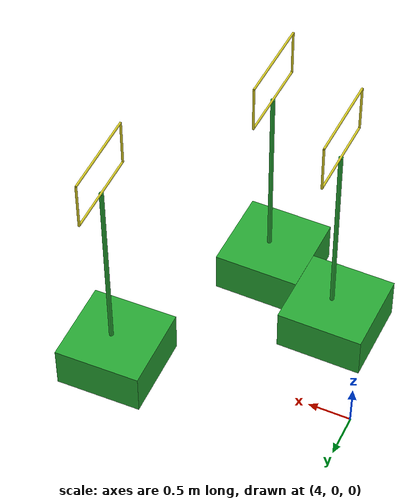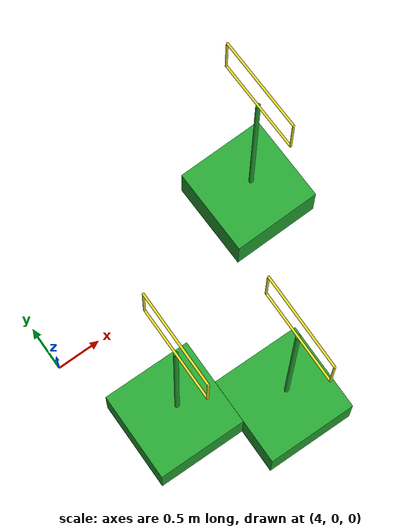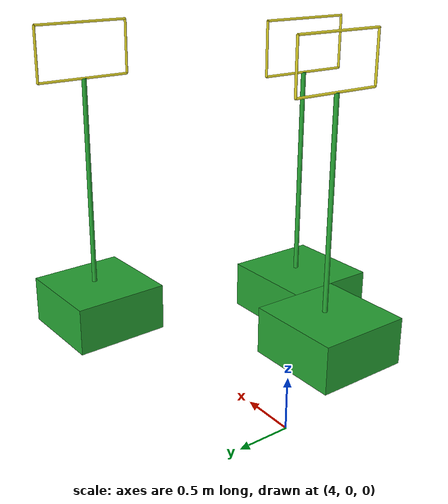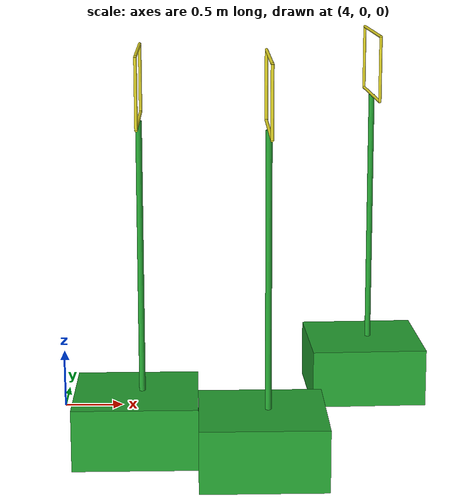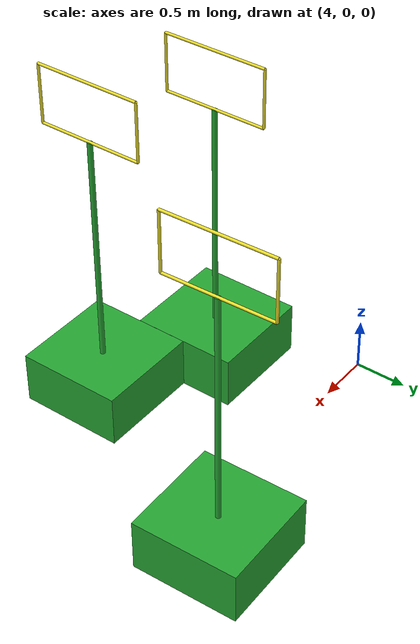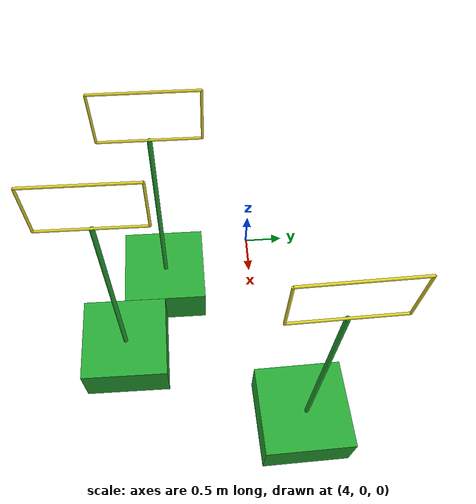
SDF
<sdf version="1.6">
 <world name="vrc_task_1">
  <model name="flipkart_hoop_clone">
   <link name="link_0">
    <inertial>
     <mass>0.530306</mass>
     <inertia>
      <ixx>0.0566207</ixx>
      <ixy>0</ixy>
      <ixz>0</ixz>
      <iyy>0.0566207</iyy>
      <iyz>0</iyz>
      <izz>0.0883844</izz>
     </inertia>
    </inertial>
    <pose>0.141833 0.667401 -1.68595 0 -0 0</pose>
    <visual name="visual">
     <geometry><box><size>1 1 0.5</size></box></geometry>
     <material>
      <lighting>1</lighting>
      <script><uri>file://media/materials/scripts/gazebo.material</uri><name>Gazebo/Green</name></script>
      <shader type="pixel"/>
      <emissive>0 0 0 1</emissive>
     </material>
    </visual>
    <collision name="collision">
     <geometry><box><size>1 1 0.5</size></box></geometry>
     <surface>
      <friction>
       <ode><mu>1</mu><mu2>1</mu2><fdir1>0 0 0</fdir1><slip1>0</slip1><slip2>0</slip2></ode>
       <torsional>
        <coefficient>1</coefficient>
        <patch_radius>0</patch_radius>
        <surface_radius>0</surface_radius>
        <use_patch_radius>1</use_patch_radius>
        <ode><slip>0</slip></ode>
       </torsional>
      </friction>
      <bounce><restitution_coefficient>0</restitution_coefficient><threshold>1e+06</threshold></bounce>
      <contact>
       <collide_without_contact>0</collide_without_contact>
       <collide_without_contact_bitmask>1</collide_without_contact_bitmask>
       <collide_bitmask>1</collide_bitmask>
       <ode>
        <soft_cfm>0</soft_cfm>
        <soft_erp>0.2</soft_erp>
        <kp>1e+13</kp>
        <kd>1</kd>
        <max_vel>0.01</max_vel>
        <min_depth>0</min_depth>
       </ode>
       <bullet>
        <split_impulse>1</split_impulse>
        <split_impulse_penetration_threshold>-0.01</split_impulse_penetration_threshold>
        <soft_cfm>0</soft_cfm>
        <soft_erp>0.2</soft_erp>
        <kp>1e+13</kp>
        <kd>1</kd>
       </bullet>
      </contact>
     </surface>
    </collision>
   </link>
   <link name="link_1">
    <inertial>
     <mass>0.25</mass>
     <inertia>
      <ixx>0.130247</ixx>
      <ixy>0</ixy>
      <ixz>0</ixz>
      <iyy>0.130247</iyy>
      <iyz>0</iyz>
      <izz>7.813e-05</izz>
     </inertia>
    </inertial>
    <pose>0.122412 0.714194 -0.478486 0 -0 0</pose>
    <visual name="visual">
     <geometry><cylinder><radius>0.025</radius><length>2.5</length></cylinder></geometry>
     <material>
      <lighting>1</lighting>
      <script><uri>file://media/materials/scripts/gazebo.material</uri><name>Gazebo/Green</name></script>
      <shader type="pixel"/>
      <emissive>0 0 0 1</emissive>
     </material>
    </visual>
    <collision name="collision">
     <geometry><cylinder><radius>0.025</radius><length>2.5</length></cylinder></geometry>
     <surface>
      <friction>
       <ode><mu>1</mu><mu2>1</mu2><fdir1>0 0 0</fdir1><slip1>0</slip1><slip2>0</slip2></ode>
       <torsional>
        <coefficient>1</coefficient>
        <patch_radius>0</patch_radius>
        <surface_radius>0</surface_radius>
        <use_patch_radius>1</use_patch_radius>
        <ode><slip>0</slip></ode>
       </torsional>
      </friction>
      <bounce><restitution_coefficient>0</restitution_coefficient><threshold>1e+06</threshold></bounce>
      <contact>
       <collide_without_contact>0</collide_without_contact>
       <collide_without_contact_bitmask>1</collide_without_contact_bitmask>
       <collide_bitmask>1</collide_bitmask>
       <ode>
        <soft_cfm>0</soft_cfm>
        <soft_erp>0.2</soft_erp>
        <kp>1e+13</kp>
        <kd>1</kd>
        <max_vel>0.01</max_vel>
        <min_depth>0</min_depth>
       </ode>
       <bullet>
        <split_impulse>1</split_impulse>
        <split_impulse_penetration_threshold>-0.01</split_impulse_penetration_threshold>
        <soft_cfm>0</soft_cfm>
        <soft_erp>0.2</soft_erp>
        <kp>1e+13</kp>
        <kd>1</kd>
       </bullet>
      </contact>
     </surface>
    </collision>
   </link>
   <link name="link_2">
    <inertial>
     <mass>0.05</mass>
     <inertia>
      <ixx>0.00416862</ixx>
      <ixy>0</ixy>
      <ixz>0</ixz>
      <iyy>0.00416862</iyy>
      <iyz>0</iyz>
      <izz>3.91e-06</izz>
     </inertia>
    </inertial>
    <pose>0.122412 0.714194 1.32141 1.57 -0 1.57</pose>
    <visual name="visual">
     <geometry><cylinder><radius>0.0125</radius><length>1</length></cylinder></geometry>
     <material>
      <lighting>1</lighting>
      <script><uri>file://media/materials/scripts/gazebo.material</uri><name>Gazebo/Yellow</name></script>
      <shader type="pixel"/>
      <emissive>0 0 0 1</emissive>
     </material>
    </visual>
    <collision name="collision">
     <geometry><cylinder><radius>0.0125</radius><length>1</length></cylinder></geometry>
     <surface>
      <friction>
       <ode><mu>1</mu><mu2>1</mu2><fdir1>0 0 0</fdir1><slip1>0</slip1><slip2>0</slip2></ode>
       <torsional>
        <coefficient>1</coefficient>
        <patch_radius>0</patch_radius>
        <surface_radius>0</surface_radius>
        <use_patch_radius>1</use_patch_radius>
        <ode><slip>0</slip></ode>
       </torsional>
      </friction>
      <bounce><restitution_coefficient>0</restitution_coefficient><threshold>1e+06</threshold></bounce>
      <contact>
       <collide_without_contact>0</collide_without_contact>
       <collide_without_contact_bitmask>1</collide_without_contact_bitmask>
       <collide_bitmask>1</collide_bitmask>
       <ode>
        <soft_cfm>0</soft_cfm>
        <soft_erp>0.2</soft_erp>
        <kp>1e+13</kp>
        <kd>1</kd>
        <max_vel>0.01</max_vel>
        <min_depth>0</min_depth>
       </ode>
       <bullet>
        <split_impulse>1</split_impulse>
        <split_impulse_penetration_threshold>-0.01</split_impulse_penetration_threshold>
        <soft_cfm>0</soft_cfm>
        <soft_erp>0.2</soft_erp>
        <kp>1e+13</kp>
        <kd>1</kd>
       </bullet>
      </contact>
     </surface>
    </collision>
   </link>
   <link name="link_2_clone_0">
    <inertial>
     <mass>0.05</mass>
     <inertia>
      <ixx>0.00416862</ixx>
      <ixy>0</ixy>
      <ixz>0</ixz>
      <iyy>0.00416862</iyy>
      <iyz>0</iyz>
      <izz>3.91e-06</izz>
     </inertia>
    </inertial>
    <pose>0.122412 0.714194 0.771414 1.57 -0 1.57</pose>
    <visual name="visual">
     <geometry><cylinder><radius>0.0125</radius><length>1</length></cylinder></geometry>
     <material>
      <lighting>1</lighting>
      <script><uri>file://media/materials/scripts/gazebo.material</uri><name>Gazebo/Yellow</name></script>
      <shader type="pixel"/>
      <emissive>0 0 0 1</emissive>
     </material>
    </visual>
    <collision name="collision">
     <geometry><cylinder><radius>0.0125</radius><length>1</length></cylinder></geometry>
     <surface>
      <friction>
       <ode><mu>1</mu><mu2>1</mu2><fdir1>0 0 0</fdir1><slip1>0</slip1><slip2>0</slip2></ode>
       <torsional>
        <coefficient>1</coefficient>
        <patch_radius>0</patch_radius>
        <surface_radius>0</surface_radius>
        <use_patch_radius>1</use_patch_radius>
        <ode><slip>0</slip></ode>
       </torsional>
      </friction>
      <bounce><restitution_coefficient>0</restitution_coefficient><threshold>1e+06</threshold></bounce>
      <contact>
       <collide_without_contact>0</collide_without_contact>
       <collide_without_contact_bitmask>1</collide_without_contact_bitmask>
       <collide_bitmask>1</collide_bitmask>
       <ode>
        <soft_cfm>0</soft_cfm>
        <soft_erp>0.2</soft_erp>
        <kp>1e+13</kp>
        <kd>1</kd>
        <max_vel>0.01</max_vel>
        <min_depth>0</min_depth>
       </ode>
       <bullet>
        <split_impulse>1</split_impulse>
        <split_impulse_penetration_threshold>-0.01</split_impulse_penetration_threshold>
        <soft_cfm>0</soft_cfm>
        <soft_erp>0.2</soft_erp>
        <kp>1e+13</kp>
        <kd>1</kd>
       </bullet>
      </contact>
     </surface>
    </collision>
   </link>
   <link name="link_3_clone_clone">
    <inertial>
     <mass>0.025</mass>
     <inertia>
      <ixx>0.00063118</ixx>
      <ixy>0</ixy>
      <ixz>0</ixz>
      <iyy>0.00063118</iyy>
      <iyz>0</iyz>
      <izz>1.95e-06</izz>
     </inertia>
    </inertial>
    <pose>-0.377588 0.714194 1.04641 8e-06 -0 8e-06</pose>
    <visual name="visual">
     <geometry><cylinder><radius>0.0125</radius><length>0.55</length></cylinder></geometry>
     <material>
      <lighting>1</lighting>
      <script><uri>file://media/materials/scripts/gazebo.material</uri><name>Gazebo/Yellow</name></script>
      <shader type="pixel"/>
      <emissive>0 0 0 1</emissive>
     </material>
    </visual>
    <collision name="collision">
     <geometry><cylinder><radius>0.0125</radius><length>0.55</length></cylinder></geometry>
     <surface>
      <friction>
       <ode><mu>1</mu><mu2>1</mu2><fdir1>0 0 0</fdir1><slip1>0</slip1><slip2>0</slip2></ode>
       <torsional>
        <coefficient>1</coefficient>
        <patch_radius>0</patch_radius>
        <surface_radius>0</surface_radius>
        <use_patch_radius>1</use_patch_radius>
        <ode><slip>0</slip></ode>
       </torsional>
      </friction>
      <bounce><restitution_coefficient>0</restitution_coefficient><threshold>1e+06</threshold></bounce>
      <contact>
       <collide_without_contact>0</collide_without_contact>
       <collide_without_contact_bitmask>1</collide_without_contact_bitmask>
       <collide_bitmask>1</collide_bitmask>
       <ode>
        <soft_cfm>0</soft_cfm>
        <soft_erp>0.2</soft_erp>
        <kp>1e+13</kp>
        <kd>1</kd>
        <max_vel>0.01</max_vel>
        <min_depth>0</min_depth>
       </ode>
       <bullet>
        <split_impulse>1</split_impulse>
        <split_impulse_penetration_threshold>-0.01</split_impulse_penetration_threshold>
        <soft_cfm>0</soft_cfm>
        <soft_erp>0.2</soft_erp>
        <kp>1e+13</kp>
        <kd>1</kd>
       </bullet>
      </contact>
     </surface>
    </collision>
   </link>
   <link name="link_3_clone_clone_clone">
    <inertial>
     <mass>0.025</mass>
     <inertia>
      <ixx>0.00063118</ixx>
      <ixy>0</ixy>
      <ixz>0</ixz>
      <iyy>0.00063118</iyy>
      <iyz>0</iyz>
      <izz>1.95e-06</izz>
     </inertia>
    </inertial>
    <pose>0.622412 0.714194 1.04641 5.7e-05 -0 5.7e-05</pose>
    <visual name="visual">
     <geometry><cylinder><radius>0.0125</radius><length>0.55</length></cylinder></geometry>
     <material>
      <lighting>1</lighting>
      <script><uri>file://media/materials/scripts/gazebo.material</uri><name>Gazebo/Yellow</name></script>
      <shader type="pixel"/>
      <emissive>0 0 0 1</emissive>
     </material>
    </visual>
    <collision name="collision">
     <geometry><cylinder><radius>0.0125</radius><length>0.55</length></cylinder></geometry>
     <surface>
      <friction>
       <ode><mu>1</mu><mu2>1</mu2><fdir1>0 0 0</fdir1><slip1>0</slip1><slip2>0</slip2></ode>
       <torsional>
        <coefficient>1</coefficient>
        <patch_radius>0</patch_radius>
        <surface_radius>0</surface_radius>
        <use_patch_radius>1</use_patch_radius>
        <ode><slip>0</slip></ode>
       </torsional>
      </friction>
      <bounce><restitution_coefficient>0</restitution_coefficient><threshold>1e+06</threshold></bounce>
      <contact>
       <collide_without_contact>0</collide_without_contact>
       <collide_without_contact_bitmask>1</collide_without_contact_bitmask>
       <collide_bitmask>1</collide_bitmask>
       <ode>
        <soft_cfm>0</soft_cfm>
        <soft_erp>0.2</soft_erp>
        <kp>1e+13</kp>
        <kd>1</kd>
        <max_vel>0.01</max_vel>
        <min_depth>0</min_depth>
       </ode>
       <bullet>
        <split_impulse>1</split_impulse>
        <split_impulse_penetration_threshold>-0.01</split_impulse_penetration_threshold>
        <soft_cfm>0</soft_cfm>
        <soft_erp>0.2</soft_erp>
        <kp>1e+13</kp>
        <kd>1</kd>
       </bullet>
      </contact>
     </surface>
    </collision>
   </link>
   <joint name="link_0_JOINT_0" type="fixed">
    <parent>link_0</parent>
    <child>link_1</child>
    <physics>
     <ode><limit><cfm>0</cfm><erp>0.2</erp></limit><suspension><cfm>0</cfm><erp>0.2</erp></suspension></ode>
    </physics>
   </joint>
   <joint name="link_1_JOINT_0" type="fixed">
    <parent>link_1</parent>
    <child>link_2_clone_0</child>
    <physics>
     <ode><limit><cfm>0</cfm><erp>0.2</erp></limit><suspension><cfm>0</cfm><erp>0.2</erp></suspension></ode>
    </physics>
   </joint>
   <joint name="link_2_JOINT_2" type="fixed">
    <parent>link_2</parent>
    <child>link_3_clone_clone_clone</child>
    <physics>
     <ode><limit><cfm>0</cfm><erp>0.2</erp></limit><suspension><cfm>0</cfm><erp>0.2</erp></suspension></ode>
    </physics>
   </joint>
   <joint name="link_2_clone_0_JOINT_4" type="fixed">
    <parent>link_2_clone_0</parent>
    <child>link_3_clone_clone</child>
    <physics>
     <ode><limit><cfm>0</cfm><erp>0.2</erp></limit><suspension><cfm>0</cfm><erp>0.2</erp></suspension></ode>
    </physics>
   </joint>
   <joint name="link_3_clone_clone_JOINT_1" type="fixed">
    <parent>link_3_clone_clone</parent>
    <child>link_2</child>
    <physics>
     <ode><limit><cfm>0</cfm><erp>0.2</erp></limit><suspension><cfm>0</cfm><erp>0.2</erp></suspension></ode>
    </physics>
   </joint>
   <joint name="link_3_clone_clone_clone_JOINT_3" type="fixed">
    <parent>link_3_clone_clone_clone</parent>
    <child>link_2_clone_0</child>
    <physics>
     <ode><limit><cfm>0</cfm><erp>0.2</erp></limit><suspension><cfm>0</cfm><erp>0.2</erp></suspension></ode>
    </physics>
   </joint>
   <static>0</static>
   <pose>4.00354 -0.99581 1.9359 1e-06 -6.8e-05 -1.57311</pose>
  </model>
  <model name="flipkart_hoop_clone_0">
   <link name="link_0">
    <inertial>
     <mass>0.530306</mass>
     <inertia>
      <ixx>0.0566207</ixx>
      <ixy>0</ixy>
      <ixz>0</ixz>
      <iyy>0.0566207</iyy>
      <iyz>0</iyz>
      <izz>0.0883844</izz>
     </inertia>
    </inertial>
    <pose>0.141833 0.667401 -1.68595 0 -0 0</pose>
    <visual name="visual">
     <geometry><box><size>1 1 0.5</size></box></geometry>
     <material>
      <lighting>1</lighting>
      <script><uri>file://media/materials/scripts/gazebo.material</uri><name>Gazebo/Green</name></script>
      <shader type="pixel"/>
      <emissive>0 0 0 1</emissive>
     </material>
    </visual>
    <collision name="collision">
     <geometry><box><size>1 1 0.5</size></box></geometry>
     <surface>
      <friction>
       <ode><mu>1</mu><mu2>1</mu2><fdir1>0 0 0</fdir1><slip1>0</slip1><slip2>0</slip2></ode>
       <torsional>
        <coefficient>1</coefficient>
        <patch_radius>0</patch_radius>
        <surface_radius>0</surface_radius>
        <use_patch_radius>1</use_patch_radius>
        <ode><slip>0</slip></ode>
       </torsional>
      </friction>
      <bounce><restitution_coefficient>0</restitution_coefficient><threshold>1e+06</threshold></bounce>
      <contact>
       <collide_without_contact>0</collide_without_contact>
       <collide_without_contact_bitmask>1</collide_without_contact_bitmask>
       <collide_bitmask>1</collide_bitmask>
       <ode>
        <soft_cfm>0</soft_cfm>
        <soft_erp>0.2</soft_erp>
        <kp>1e+13</kp>
        <kd>1</kd>
        <max_vel>0.01</max_vel>
        <min_depth>0</min_depth>
       </ode>
       <bullet>
        <split_impulse>1</split_impulse>
        <split_impulse_penetration_threshold>-0.01</split_impulse_penetration_threshold>
        <soft_cfm>0</soft_cfm>
        <soft_erp>0.2</soft_erp>
        <kp>1e+13</kp>
        <kd>1</kd>
       </bullet>
      </contact>
     </surface>
    </collision>
   </link>
   <link name="link_1">
    <inertial>
     <mass>0.25</mass>
     <inertia>
      <ixx>0.130247</ixx>
      <ixy>0</ixy>
      <ixz>0</ixz>
      <iyy>0.130247</iyy>
      <iyz>0</iyz>
      <izz>7.813e-05</izz>
     </inertia>
    </inertial>
    <pose>0.122412 0.714194 -0.478486 0 -0 0</pose>
    <visual name="visual">
     <geometry><cylinder><radius>0.025</radius><length>2.5</length></cylinder></geometry>
     <material>
      <lighting>1</lighting>
      <script><uri>file://media/materials/scripts/gazebo.material</uri><name>Gazebo/Green</name></script>
      <shader type="pixel"/>
      <emissive>0 0 0 1</emissive>
     </material>
    </visual>
    <collision name="collision">
     <geometry><cylinder><radius>0.025</radius><length>2.5</length></cylinder></geometry>
     <surface>
      <friction>
       <ode><mu>1</mu><mu2>1</mu2><fdir1>0 0 0</fdir1><slip1>0</slip1><slip2>0</slip2></ode>
       <torsional>
        <coefficient>1</coefficient>
        <patch_radius>0</patch_radius>
        <surface_radius>0</surface_radius>
        <use_patch_radius>1</use_patch_radius>
        <ode><slip>0</slip></ode>
       </torsional>
      </friction>
      <bounce><restitution_coefficient>0</restitution_coefficient><threshold>1e+06</threshold></bounce>
      <contact>
       <collide_without_contact>0</collide_without_contact>
       <collide_without_contact_bitmask>1</collide_without_contact_bitmask>
       <collide_bitmask>1</collide_bitmask>
       <ode>
        <soft_cfm>0</soft_cfm>
        <soft_erp>0.2</soft_erp>
        <kp>1e+13</kp>
        <kd>1</kd>
        <max_vel>0.01</max_vel>
        <min_depth>0</min_depth>
       </ode>
       <bullet>
        <split_impulse>1</split_impulse>
        <split_impulse_penetration_threshold>-0.01</split_impulse_penetration_threshold>
        <soft_cfm>0</soft_cfm>
        <soft_erp>0.2</soft_erp>
        <kp>1e+13</kp>
        <kd>1</kd>
       </bullet>
      </contact>
     </surface>
    </collision>
   </link>
   <link name="link_2">
    <inertial>
     <mass>0.05</mass>
     <inertia>
      <ixx>0.00416862</ixx>
      <ixy>0</ixy>
      <ixz>0</ixz>
      <iyy>0.00416862</iyy>
      <iyz>0</iyz>
      <izz>3.91e-06</izz>
     </inertia>
    </inertial>
    <pose>0.122412 0.714194 1.32141 1.57 -0 1.57</pose>
    <visual name="visual">
     <geometry><cylinder><radius>0.0125</radius><length>1</length></cylinder></geometry>
     <material>
      <lighting>1</lighting>
      <script><uri>file://media/materials/scripts/gazebo.material</uri><name>Gazebo/Yellow</name></script>
      <shader type="pixel"/>
      <emissive>0 0 0 1</emissive>
     </material>
    </visual>
    <collision name="collision">
     <geometry><cylinder><radius>0.0125</radius><length>1</length></cylinder></geometry>
     <surface>
      <friction>
       <ode><mu>1</mu><mu2>1</mu2><fdir1>0 0 0</fdir1><slip1>0</slip1><slip2>0</slip2></ode>
       <torsional>
        <coefficient>1</coefficient>
        <patch_radius>0</patch_radius>
        <surface_radius>0</surface_radius>
        <use_patch_radius>1</use_patch_radius>
        <ode><slip>0</slip></ode>
       </torsional>
      </friction>
      <bounce><restitution_coefficient>0</restitution_coefficient><threshold>1e+06</threshold></bounce>
      <contact>
       <collide_without_contact>0</collide_without_contact>
       <collide_without_contact_bitmask>1</collide_without_contact_bitmask>
       <collide_bitmask>1</collide_bitmask>
       <ode>
        <soft_cfm>0</soft_cfm>
        <soft_erp>0.2</soft_erp>
        <kp>1e+13</kp>
        <kd>1</kd>
        <max_vel>0.01</max_vel>
        <min_depth>0</min_depth>
       </ode>
       <bullet>
        <split_impulse>1</split_impulse>
        <split_impulse_penetration_threshold>-0.01</split_impulse_penetration_threshold>
        <soft_cfm>0</soft_cfm>
        <soft_erp>0.2</soft_erp>
        <kp>1e+13</kp>
        <kd>1</kd>
       </bullet>
      </contact>
     </surface>
    </collision>
   </link>
   <link name="link_2_clone_0">
    <inertial>
     <mass>0.05</mass>
     <inertia>
      <ixx>0.00416862</ixx>
      <ixy>0</ixy>
      <ixz>0</ixz>
      <iyy>0.00416862</iyy>
      <iyz>0</iyz>
      <izz>3.91e-06</izz>
     </inertia>
    </inertial>
    <pose>0.122412 0.714194 0.771414 1.57 -0 1.57</pose>
    <visual name="visual">
     <geometry><cylinder><radius>0.0125</radius><length>1</length></cylinder></geometry>
     <material>
      <lighting>1</lighting>
      <script><uri>file://media/materials/scripts/gazebo.material</uri><name>Gazebo/Yellow</name></script>
      <shader type="pixel"/>
      <emissive>0 0 0 1</emissive>
     </material>
    </visual>
    <collision name="collision">
     <geometry><cylinder><radius>0.0125</radius><length>1</length></cylinder></geometry>
     <surface>
      <friction>
       <ode><mu>1</mu><mu2>1</mu2><fdir1>0 0 0</fdir1><slip1>0</slip1><slip2>0</slip2></ode>
       <torsional>
        <coefficient>1</coefficient>
        <patch_radius>0</patch_radius>
        <surface_radius>0</surface_radius>
        <use_patch_radius>1</use_patch_radius>
        <ode><slip>0</slip></ode>
       </torsional>
      </friction>
      <bounce><restitution_coefficient>0</restitution_coefficient><threshold>1e+06</threshold></bounce>
      <contact>
       <collide_without_contact>0</collide_without_contact>
       <collide_without_contact_bitmask>1</collide_without_contact_bitmask>
       <collide_bitmask>1</collide_bitmask>
       <ode>
        <soft_cfm>0</soft_cfm>
        <soft_erp>0.2</soft_erp>
        <kp>1e+13</kp>
        <kd>1</kd>
        <max_vel>0.01</max_vel>
        <min_depth>0</min_depth>
       </ode>
       <bullet>
        <split_impulse>1</split_impulse>
        <split_impulse_penetration_threshold>-0.01</split_impulse_penetration_threshold>
        <soft_cfm>0</soft_cfm>
        <soft_erp>0.2</soft_erp>
        <kp>1e+13</kp>
        <kd>1</kd>
       </bullet>
      </contact>
     </surface>
    </collision>
   </link>
   <link name="link_3_clone_clone">
    <inertial>
     <mass>0.025</mass>
     <inertia>
      <ixx>0.00063118</ixx>
      <ixy>0</ixy>
      <ixz>0</ixz>
      <iyy>0.00063118</iyy>
      <iyz>0</iyz>
      <izz>1.95e-06</izz>
     </inertia>
    </inertial>
    <pose>-0.377588 0.714194 1.04641 8e-06 -0 8e-06</pose>
    <visual name="visual">
     <geometry><cylinder><radius>0.0125</radius><length>0.55</length></cylinder></geometry>
     <material>
      <lighting>1</lighting>
      <script><uri>file://media/materials/scripts/gazebo.material</uri><name>Gazebo/Yellow</name></script>
      <shader type="pixel"/>
      <emissive>0 0 0 1</emissive>
     </material>
    </visual>
    <collision name="collision">
     <geometry><cylinder><radius>0.0125</radius><length>0.55</length></cylinder></geometry>
     <surface>
      <friction>
       <ode><mu>1</mu><mu2>1</mu2><fdir1>0 0 0</fdir1><slip1>0</slip1><slip2>0</slip2></ode>
       <torsional>
        <coefficient>1</coefficient>
        <patch_radius>0</patch_radius>
        <surface_radius>0</surface_radius>
        <use_patch_radius>1</use_patch_radius>
        <ode><slip>0</slip></ode>
       </torsional>
      </friction>
      <bounce><restitution_coefficient>0</restitution_coefficient><threshold>1e+06</threshold></bounce>
      <contact>
       <collide_without_contact>0</collide_without_contact>
       <collide_without_contact_bitmask>1</collide_without_contact_bitmask>
       <collide_bitmask>1</collide_bitmask>
       <ode>
        <soft_cfm>0</soft_cfm>
        <soft_erp>0.2</soft_erp>
        <kp>1e+13</kp>
        <kd>1</kd>
        <max_vel>0.01</max_vel>
        <min_depth>0</min_depth>
       </ode>
       <bullet>
        <split_impulse>1</split_impulse>
        <split_impulse_penetration_threshold>-0.01</split_impulse_penetration_threshold>
        <soft_cfm>0</soft_cfm>
        <soft_erp>0.2</soft_erp>
        <kp>1e+13</kp>
        <kd>1</kd>
       </bullet>
      </contact>
     </surface>
    </collision>
   </link>
   <link name="link_3_clone_clone_clone">
    <inertial>
     <mass>0.025</mass>
     <inertia>
      <ixx>0.00063118</ixx>
      <ixy>0</ixy>
      <ixz>0</ixz>
      <iyy>0.00063118</iyy>
      <iyz>0</iyz>
      <izz>1.95e-06</izz>
     </inertia>
    </inertial>
    <pose>0.622412 0.714194 1.04641 5.7e-05 -0 5.7e-05</pose>
    <visual name="visual">
     <geometry><cylinder><radius>0.0125</radius><length>0.55</length></cylinder></geometry>
     <material>
      <lighting>1</lighting>
      <script><uri>file://media/materials/scripts/gazebo.material</uri><name>Gazebo/Yellow</name></script>
      <shader type="pixel"/>
      <emissive>0 0 0 1</emissive>
     </material>
    </visual>
    <collision name="collision">
     <geometry><cylinder><radius>0.0125</radius><length>0.55</length></cylinder></geometry>
     <surface>
      <friction>
       <ode><mu>1</mu><mu2>1</mu2><fdir1>0 0 0</fdir1><slip1>0</slip1><slip2>0</slip2></ode>
       <torsional>
        <coefficient>1</coefficient>
        <patch_radius>0</patch_radius>
        <surface_radius>0</surface_radius>
        <use_patch_radius>1</use_patch_radius>
        <ode><slip>0</slip></ode>
       </torsional>
      </friction>
      <bounce><restitution_coefficient>0</restitution_coefficient><threshold>1e+06</threshold></bounce>
      <contact>
       <collide_without_contact>0</collide_without_contact>
       <collide_without_contact_bitmask>1</collide_without_contact_bitmask>
       <collide_bitmask>1</collide_bitmask>
       <ode>
        <soft_cfm>0</soft_cfm>
        <soft_erp>0.2</soft_erp>
        <kp>1e+13</kp>
        <kd>1</kd>
        <max_vel>0.01</max_vel>
        <min_depth>0</min_depth>
       </ode>
       <bullet>
        <split_impulse>1</split_impulse>
        <split_impulse_penetration_threshold>-0.01</split_impulse_penetration_threshold>
        <soft_cfm>0</soft_cfm>
        <soft_erp>0.2</soft_erp>
        <kp>1e+13</kp>
        <kd>1</kd>
       </bullet>
      </contact>
     </surface>
    </collision>
   </link>
   <joint name="link_0_JOINT_0" type="fixed">
    <parent>link_0</parent>
    <child>link_1</child>
    <physics>
     <ode><limit><cfm>0</cfm><erp>0.2</erp></limit><suspension><cfm>0</cfm><erp>0.2</erp></suspension></ode>
    </physics>
   </joint>
   <joint name="link_1_JOINT_0" type="fixed">
    <parent>link_1</parent>
    <child>link_2_clone_0</child>
    <physics>
     <ode><limit><cfm>0</cfm><erp>0.2</erp></limit><suspension><cfm>0</cfm><erp>0.2</erp></suspension></ode>
    </physics>
   </joint>
   <joint name="link_2_JOINT_2" type="fixed">
    <parent>link_2</parent>
    <child>link_3_clone_clone_clone</child>
    <physics>
     <ode><limit><cfm>0</cfm><erp>0.2</erp></limit><suspension><cfm>0</cfm><erp>0.2</erp></suspension></ode>
    </physics>
   </joint>
   <joint name="link_2_clone_0_JOINT_4" type="fixed">
    <parent>link_2_clone_0</parent>
    <child>link_3_clone_clone</child>
    <physics>
     <ode><limit><cfm>0</cfm><erp>0.2</erp></limit><suspension><cfm>0</cfm><erp>0.2</erp></suspension></ode>
    </physics>
   </joint>
   <joint name="link_3_clone_clone_JOINT_1" type="fixed">
    <parent>link_3_clone_clone</parent>
    <child>link_2</child>
    <physics>
     <ode><limit><cfm>0</cfm><erp>0.2</erp></limit><suspension><cfm>0</cfm><erp>0.2</erp></suspension></ode>
    </physics>
   </joint>
   <joint name="link_3_clone_clone_clone_JOINT_3" type="fixed">
    <parent>link_3_clone_clone_clone</parent>
    <child>link_2_clone_0</child>
    <physics>
     <ode><limit><cfm>0</cfm><erp>0.2</erp></limit><suspension><cfm>0</cfm><erp>0.2</erp></suspension></ode>
    </physics>
   </joint>
   <static>0</static>
   <pose>5.00293 -1.5006 1.93592 -3e-06 5.9e-05 -1.57371</pose>
  </model>
  <model name="flipkart_hoop_clone_1">
   <link name="link_0">
    <inertial>
     <mass>0.530306</mass>
     <inertia>
      <ixx>0.0566207</ixx>
      <ixy>0</ixy>
      <ixz>0</ixz>
      <iyy>0.0566207</iyy>
      <iyz>0</iyz>
      <izz>0.0883844</izz>
     </inertia>
    </inertial>
    <pose>0.141833 0.667401 -1.68595 0 -0 0</pose>
    <visual name="visual">
     <geometry><box><size>1 1 0.5</size></box></geometry>
     <material>
      <lighting>1</lighting>
      <script><uri>file://media/materials/scripts/gazebo.material</uri><name>Gazebo/Green</name></script>
      <shader type="pixel"/>
      <emissive>0 0 0 1</emissive>
     </material>
    </visual>
    <collision name="collision">
     <geometry><box><size>1 1 0.5</size></box></geometry>
     <surface>
      <friction>
       <ode><mu>1</mu><mu2>1</mu2><fdir1>0 0 0</fdir1><slip1>0</slip1><slip2>0</slip2></ode>
       <torsional>
        <coefficient>1</coefficient>
        <patch_radius>0</patch_radius>
        <surface_radius>0</surface_radius>
        <use_patch_radius>1</use_patch_radius>
        <ode><slip>0</slip></ode>
       </torsional>
      </friction>
      <bounce><restitution_coefficient>0</restitution_coefficient><threshold>1e+06</threshold></bounce>
      <contact>
       <collide_without_contact>0</collide_without_contact>
       <collide_without_contact_bitmask>1</collide_without_contact_bitmask>
       <collide_bitmask>1</collide_bitmask>
       <ode>
        <soft_cfm>0</soft_cfm>
        <soft_erp>0.2</soft_erp>
        <kp>1e+13</kp>
        <kd>1</kd>
        <max_vel>0.01</max_vel>
        <min_depth>0</min_depth>
       </ode>
       <bullet>
        <split_impulse>1</split_impulse>
        <split_impulse_penetration_threshold>-0.01</split_impulse_penetration_threshold>
        <soft_cfm>0</soft_cfm>
        <soft_erp>0.2</soft_erp>
        <kp>1e+13</kp>
        <kd>1</kd>
       </bullet>
      </contact>
     </surface>
    </collision>
   </link>
   <link name="link_1">
    <inertial>
     <mass>0.25</mass>
     <inertia>
      <ixx>0.130247</ixx>
      <ixy>0</ixy>
      <ixz>0</ixz>
      <iyy>0.130247</iyy>
      <iyz>0</iyz>
      <izz>7.813e-05</izz>
     </inertia>
    </inertial>
    <pose>0.122412 0.714194 -0.478486 0 -0 0</pose>
    <visual name="visual">
     <geometry><cylinder><radius>0.025</radius><length>2.5</length></cylinder></geometry>
     <material>
      <lighting>1</lighting>
      <script><uri>file://media/materials/scripts/gazebo.material</uri><name>Gazebo/Green</name></script>
      <shader type="pixel"/>
      <emissive>0 0 0 1</emissive>
     </material>
    </visual>
    <collision name="collision">
     <geometry><cylinder><radius>0.025</radius><length>2.5</length></cylinder></geometry>
     <surface>
      <friction>
       <ode><mu>1</mu><mu2>1</mu2><fdir1>0 0 0</fdir1><slip1>0</slip1><slip2>0</slip2></ode>
       <torsional>
        <coefficient>1</coefficient>
        <patch_radius>0</patch_radius>
        <surface_radius>0</surface_radius>
        <use_patch_radius>1</use_patch_radius>
        <ode><slip>0</slip></ode>
       </torsional>
      </friction>
      <bounce><restitution_coefficient>0</restitution_coefficient><threshold>1e+06</threshold></bounce>
      <contact>
       <collide_without_contact>0</collide_without_contact>
       <collide_without_contact_bitmask>1</collide_without_contact_bitmask>
       <collide_bitmask>1</collide_bitmask>
       <ode>
        <soft_cfm>0</soft_cfm>
        <soft_erp>0.2</soft_erp>
        <kp>1e+13</kp>
        <kd>1</kd>
        <max_vel>0.01</max_vel>
        <min_depth>0</min_depth>
       </ode>
       <bullet>
        <split_impulse>1</split_impulse>
        <split_impulse_penetration_threshold>-0.01</split_impulse_penetration_threshold>
        <soft_cfm>0</soft_cfm>
        <soft_erp>0.2</soft_erp>
        <kp>1e+13</kp>
        <kd>1</kd>
       </bullet>
      </contact>
     </surface>
    </collision>
   </link>
   <link name="link_2">
    <inertial>
     <mass>0.05</mass>
     <inertia>
      <ixx>0.00416862</ixx>
      <ixy>0</ixy>
      <ixz>0</ixz>
      <iyy>0.00416862</iyy>
      <iyz>0</iyz>
      <izz>3.91e-06</izz>
     </inertia>
    </inertial>
    <pose>0.122412 0.714194 1.32141 1.57 -0 1.57</pose>
    <visual name="visual">
     <geometry><cylinder><radius>0.0125</radius><length>1</length></cylinder></geometry>
     <material>
      <lighting>1</lighting>
      <script><uri>file://media/materials/scripts/gazebo.material</uri><name>Gazebo/Yellow</name></script>
      <shader type="pixel"/>
      <emissive>0 0 0 1</emissive>
     </material>
    </visual>
    <collision name="collision">
     <geometry><cylinder><radius>0.0125</radius><length>1</length></cylinder></geometry>
     <surface>
      <friction>
       <ode><mu>1</mu><mu2>1</mu2><fdir1>0 0 0</fdir1><slip1>0</slip1><slip2>0</slip2></ode>
       <torsional>
        <coefficient>1</coefficient>
        <patch_radius>0</patch_radius>
        <surface_radius>0</surface_radius>
        <use_patch_radius>1</use_patch_radius>
        <ode><slip>0</slip></ode>
       </torsional>
      </friction>
      <bounce><restitution_coefficient>0</restitution_coefficient><threshold>1e+06</threshold></bounce>
      <contact>
       <collide_without_contact>0</collide_without_contact>
       <collide_without_contact_bitmask>1</collide_without_contact_bitmask>
       <collide_bitmask>1</collide_bitmask>
       <ode>
        <soft_cfm>0</soft_cfm>
        <soft_erp>0.2</soft_erp>
        <kp>1e+13</kp>
        <kd>1</kd>
        <max_vel>0.01</max_vel>
        <min_depth>0</min_depth>
       </ode>
       <bullet>
        <split_impulse>1</split_impulse>
        <split_impulse_penetration_threshold>-0.01</split_impulse_penetration_threshold>
        <soft_cfm>0</soft_cfm>
        <soft_erp>0.2</soft_erp>
        <kp>1e+13</kp>
        <kd>1</kd>
       </bullet>
      </contact>
     </surface>
    </collision>
   </link>
   <link name="link_2_clone_0">
    <inertial>
     <mass>0.05</mass>
     <inertia>
      <ixx>0.00416862</ixx>
      <ixy>0</ixy>
      <ixz>0</ixz>
      <iyy>0.00416862</iyy>
      <iyz>0</iyz>
      <izz>3.91e-06</izz>
     </inertia>
    </inertial>
    <pose>0.122412 0.714194 0.771414 1.57 -0 1.57</pose>
    <visual name="visual">
     <geometry><cylinder><radius>0.0125</radius><length>1</length></cylinder></geometry>
     <material>
      <lighting>1</lighting>
      <script><uri>file://media/materials/scripts/gazebo.material</uri><name>Gazebo/Yellow</name></script>
      <shader type="pixel"/>
      <emissive>0 0 0 1</emissive>
     </material>
    </visual>
    <collision name="collision">
     <geometry><cylinder><radius>0.0125</radius><length>1</length></cylinder></geometry>
     <surface>
      <friction>
       <ode><mu>1</mu><mu2>1</mu2><fdir1>0 0 0</fdir1><slip1>0</slip1><slip2>0</slip2></ode>
       <torsional>
        <coefficient>1</coefficient>
        <patch_radius>0</patch_radius>
        <surface_radius>0</surface_radius>
        <use_patch_radius>1</use_patch_radius>
        <ode><slip>0</slip></ode>
       </torsional>
      </friction>
      <bounce><restitution_coefficient>0</restitution_coefficient><threshold>1e+06</threshold></bounce>
      <contact>
       <collide_without_contact>0</collide_without_contact>
       <collide_without_contact_bitmask>1</collide_without_contact_bitmask>
       <collide_bitmask>1</collide_bitmask>
       <ode>
        <soft_cfm>0</soft_cfm>
        <soft_erp>0.2</soft_erp>
        <kp>1e+13</kp>
        <kd>1</kd>
        <max_vel>0.01</max_vel>
        <min_depth>0</min_depth>
       </ode>
       <bullet>
        <split_impulse>1</split_impulse>
        <split_impulse_penetration_threshold>-0.01</split_impulse_penetration_threshold>
        <soft_cfm>0</soft_cfm>
        <soft_erp>0.2</soft_erp>
        <kp>1e+13</kp>
        <kd>1</kd>
       </bullet>
      </contact>
     </surface>
    </collision>
   </link>
   <link name="link_3_clone_clone">
    <inertial>
     <mass>0.025</mass>
     <inertia>
      <ixx>0.00063118</ixx>
      <ixy>0</ixy>
      <ixz>0</ixz>
      <iyy>0.00063118</iyy>
      <iyz>0</iyz>
      <izz>1.95e-06</izz>
     </inertia>
    </inertial>
    <pose>-0.377588 0.714194 1.04641 8e-06 -0 8e-06</pose>
    <visual name="visual">
     <geometry><cylinder><radius>0.0125</radius><length>0.55</length></cylinder></geometry>
     <material>
      <lighting>1</lighting>
      <script><uri>file://media/materials/scripts/gazebo.material</uri><name>Gazebo/Yellow</name></script>
      <shader type="pixel"/>
      <emissive>0 0 0 1</emissive>
     </material>
    </visual>
    <collision name="collision">
     <geometry><cylinder><radius>0.0125</radius><length>0.55</length></cylinder></geometry>
     <surface>
      <friction>
       <ode><mu>1</mu><mu2>1</mu2><fdir1>0 0 0</fdir1><slip1>0</slip1><slip2>0</slip2></ode>
       <torsional>
        <coefficient>1</coefficient>
        <patch_radius>0</patch_radius>
        <surface_radius>0</surface_radius>
        <use_patch_radius>1</use_patch_radius>
        <ode><slip>0</slip></ode>
       </torsional>
      </friction>
      <bounce><restitution_coefficient>0</restitution_coefficient><threshold>1e+06</threshold></bounce>
      <contact>
       <collide_without_contact>0</collide_without_contact>
       <collide_without_contact_bitmask>1</collide_without_contact_bitmask>
       <collide_bitmask>1</collide_bitmask>
       <ode>
        <soft_cfm>0</soft_cfm>
        <soft_erp>0.2</soft_erp>
        <kp>1e+13</kp>
        <kd>1</kd>
        <max_vel>0.01</max_vel>
        <min_depth>0</min_depth>
       </ode>
       <bullet>
        <split_impulse>1</split_impulse>
        <split_impulse_penetration_threshold>-0.01</split_impulse_penetration_threshold>
        <soft_cfm>0</soft_cfm>
        <soft_erp>0.2</soft_erp>
        <kp>1e+13</kp>
        <kd>1</kd>
       </bullet>
      </contact>
     </surface>
    </collision>
   </link>
   <link name="link_3_clone_clone_clone">
    <inertial>
     <mass>0.025</mass>
     <inertia>
      <ixx>0.00063118</ixx>
      <ixy>0</ixy>
      <ixz>0</ixz>
      <iyy>0.00063118</iyy>
      <iyz>0</iyz>
      <izz>1.95e-06</izz>
     </inertia>
    </inertial>
    <pose>0.622412 0.714194 1.04641 5.7e-05 -0 5.7e-05</pose>
    <visual name="visual">
     <geometry><cylinder><radius>0.0125</radius><length>0.55</length></cylinder></geometry>
     <material>
      <lighting>1</lighting>
      <script><uri>file://media/materials/scripts/gazebo.material</uri><name>Gazebo/Yellow</name></script>
      <shader type="pixel"/>
      <emissive>0 0 0 1</emissive>
     </material>
    </visual>
    <collision name="collision">
     <geometry><cylinder><radius>0.0125</radius><length>0.55</length></cylinder></geometry>
     <surface>
      <friction>
       <ode><mu>1</mu><mu2>1</mu2><fdir1>0 0 0</fdir1><slip1>0</slip1><slip2>0</slip2></ode>
       <torsional>
        <coefficient>1</coefficient>
        <patch_radius>0</patch_radius>
        <surface_radius>0</surface_radius>
        <use_patch_radius>1</use_patch_radius>
        <ode><slip>0</slip></ode>
       </torsional>
      </friction>
      <bounce><restitution_coefficient>0</restitution_coefficient><threshold>1e+06</threshold></bounce>
      <contact>
       <collide_without_contact>0</collide_without_contact>
       <collide_without_contact_bitmask>1</collide_without_contact_bitmask>
       <collide_bitmask>1</collide_bitmask>
       <ode>
        <soft_cfm>0</soft_cfm>
        <soft_erp>0.2</soft_erp>
        <kp>1e+13</kp>
        <kd>1</kd>
        <max_vel>0.01</max_vel>
        <min_depth>0</min_depth>
       </ode>
       <bullet>
        <split_impulse>1</split_impulse>
        <split_impulse_penetration_threshold>-0.01</split_impulse_penetration_threshold>
        <soft_cfm>0</soft_cfm>
        <soft_erp>0.2</soft_erp>
        <kp>1e+13</kp>
        <kd>1</kd>
       </bullet>
      </contact>
     </surface>
    </collision>
   </link>
   <joint name="link_0_JOINT_0" type="fixed">
    <parent>link_0</parent>
    <child>link_1</child>
    <physics>
     <ode><limit><cfm>0</cfm><erp>0.2</erp></limit><suspension><cfm>0</cfm><erp>0.2</erp></suspension></ode>
    </physics>
   </joint>
   <joint name="link_1_JOINT_0" type="fixed">
    <parent>link_1</parent>
    <child>link_2_clone_0</child>
    <physics>
     <ode><limit><cfm>0</cfm><erp>0.2</erp></limit><suspension><cfm>0</cfm><erp>0.2</erp></suspension></ode>
    </physics>
   </joint>
   <joint name="link_2_JOINT_2" type="fixed">
    <parent>link_2</parent>
    <child>link_3_clone_clone_clone</child>
    <physics>
     <ode><limit><cfm>0</cfm><erp>0.2</erp></limit><suspension><cfm>0</cfm><erp>0.2</erp></suspension></ode>
    </physics>
   </joint>
   <joint name="link_2_clone_0_JOINT_4" type="fixed">
    <parent>link_2_clone_0</parent>
    <child>link_3_clone_clone</child>
    <physics>
     <ode><limit><cfm>0</cfm><erp>0.2</erp></limit><suspension><cfm>0</cfm><erp>0.2</erp></suspension></ode>
    </physics>
   </joint>
   <joint name="link_3_clone_clone_JOINT_1" type="fixed">
    <parent>link_3_clone_clone</parent>
    <child>link_2</child>
    <physics>
     <ode><limit><cfm>0</cfm><erp>0.2</erp></limit><suspension><cfm>0</cfm><erp>0.2</erp></suspension></ode>
    </physics>
   </joint>
   <joint name="link_3_clone_clone_clone_JOINT_3" type="fixed">
    <parent>link_3_clone_clone_clone</parent>
    <child>link_2_clone_0</child>
    <physics>
     <ode><limit><cfm>0</cfm><erp>0.2</erp></limit><suspension><cfm>0</cfm><erp>0.2</erp></suspension></ode>
    </physics>
   </joint>
   <static>0</static>
   <pose>6.00056 0.500978 1.9359 1e-06 -6.5e-05 -1.5427</pose>
  </model>
 </world>
</sdf>
